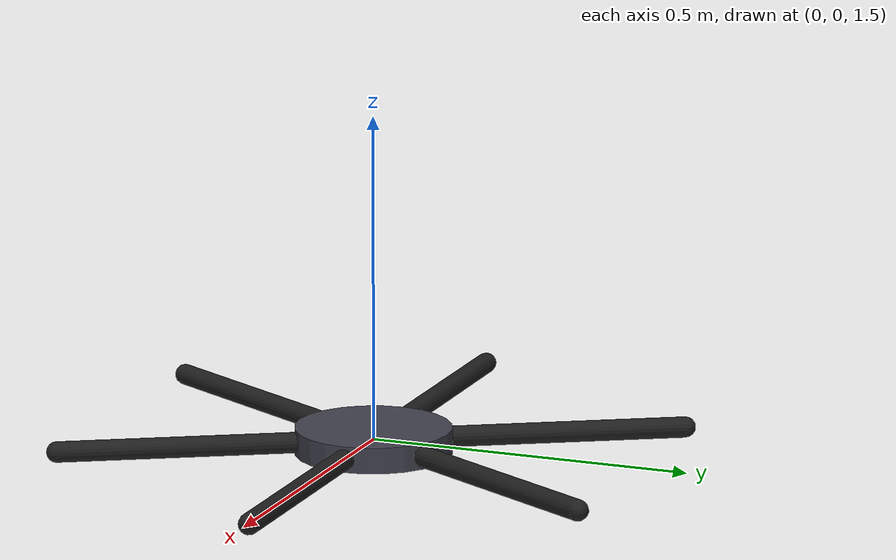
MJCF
<mujoco model="drone_hex_base">
  <compiler angle="radian" coordinate="local"/>
  <option timestep="0.002" gravity="0 0 -9.81" integrator="RK4"/>

  <visual>
    <headlight ambient="0.5 0.5 0.5" diffuse="0.8 0.8 0.8"/>
  </visual>

  <asset>
    <texture name="grid" type="2d" builtin="checker" rgb1="0.2 0.3 0.4" rgb2="0.1 0.1 0.1" width="512" height="512"/>
    <material name="mat_grid" texture="grid" texrepeat="10 10" reflectance="0.1"/>
  </asset>

  <worldbody>
    <geom name="ground" type="plane" size="30 30 0.1" material="mat_grid"/>
    <light pos="0 0 8" dir="0 0 -1"/>

    <body name="drone" pos="0 0 1.5">
      <freejoint/>
      <!-- Budget BOM-level hex estimate (~10.5kg). -->
      <inertial pos="0 0 0" mass="10.519" diaginertia="0.55 0.55 0.9"/>

      <!-- Center plate -->
      <geom name="hub" type="cylinder" size="0.12 0.02" rgba="0.25 0.25 0.3 1"/>

      <!-- 6 radial arms (R ~ 0.48m from BOM spacing) -->
      <geom name="arm_0" type="capsule" fromto="0 0 0 0.48 0 0" size="0.016" rgba="0.12 0.12 0.12 1"/>
      <geom name="arm_60" type="capsule" fromto="0 0 0 0.24 0.415692 0" size="0.016" rgba="0.12 0.12 0.12 1"/>
      <geom name="arm_120" type="capsule" fromto="0 0 0 -0.24 0.415692 0" size="0.016" rgba="0.12 0.12 0.12 1"/>
      <geom name="arm_180" type="capsule" fromto="0 0 0 -0.48 0 0" size="0.016" rgba="0.12 0.12 0.12 1"/>
      <geom name="arm_240" type="capsule" fromto="0 0 0 -0.24 -0.415692 0" size="0.016" rgba="0.12 0.12 0.12 1"/>
      <geom name="arm_300" type="capsule" fromto="0 0 0 0.24 -0.415692 0" size="0.016" rgba="0.12 0.12 0.12 1"/>

      <!-- Rotor sites -->
      <site name="rotor_1" pos="0.48 0 0" size="0.012" rgba="1 0 0 1"/>
      <site name="rotor_2" pos="0.24 0.415692 0" size="0.012" rgba="0 1 0 1"/>
      <site name="rotor_3" pos="-0.24 0.415692 0" size="0.012" rgba="0 0 1 1"/>
      <site name="rotor_4" pos="-0.48 0 0" size="0.012" rgba="1 1 0 1"/>
      <site name="rotor_5" pos="-0.24 -0.415692 0" size="0.012" rgba="1 0 1 1"/>
      <site name="rotor_6" pos="0.24 -0.415692 0" size="0.012" rgba="0 1 1 1"/>
    </body>
  </worldbody>
</mujoco>
